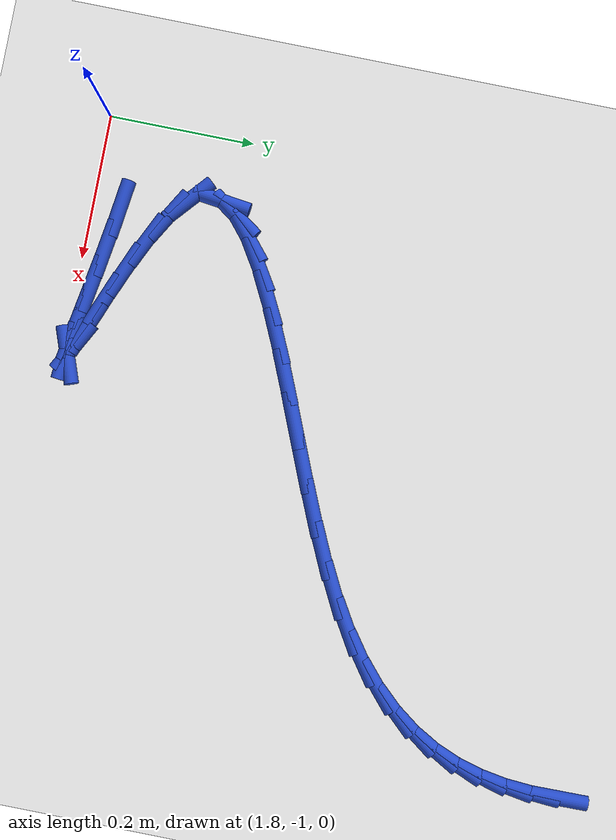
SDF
<sdf version="1.6">
 <world name="default">
  <model name="ground_plane">
   <static>1</static>
   <link name="link">
    <collision name="collision">
     <geometry><plane><normal>0 0 1</normal><size>100 100</size></plane></geometry>
     <surface><friction><ode><mu>100</mu><mu2>50</mu2></ode></friction></surface>
    </collision>
    <visual name="visual">
     <cast_shadows>0</cast_shadows>
     <geometry><plane><normal>0 0 1</normal><size>100 100</size></plane></geometry>
     <material>
      <script><uri>file://media/materials/scripts/gazebo.material</uri><name>Gazebo/WhiteGlow</name></script>
     </material>
    </visual>
   </link>
  </model>
  <model name="line">
   <link name="link_119">
    <pose>2.592602277168068 -0.21983788371928903 0.01 0 1.57 -1.5612633058571868</pose>
    <collision name="collision">
     <geometry><cylinder><radius>0.01</radius><length>0.08</length></cylinder></geometry>
    </collision>
    <visual name="visual">
     <material>
      <script><name>Gazebo/Blue</name><uri>file://media/materials/scripts/gazebo.material</uri></script>
     </material>
     <geometry><cylinder><radius>0.01</radius><length>0.08</length></cylinder></geometry>
    </visual>
   </link>
   <link name="link_120">
    <pose>2.5929655527846958 -0.2579438119752452 0.01 0 1.57 1.4981975116933537</pose>
    <collision name="collision">
     <geometry><cylinder><radius>0.01</radius><length>0.08</length></cylinder></geometry>
    </collision>
    <visual name="visual">
     <material>
      <script><name>Gazebo/Blue</name><uri>file://media/materials/scripts/gazebo.material</uri></script>
     </material>
     <geometry><cylinder><radius>0.01</radius><length>0.08</length></cylinder></geometry>
    </visual>
   </link>
   <link name="link_121">
    <pose>2.5902887094207965 -0.2947507331453954 0.01 0 1.57 1.4025398007083074</pose>
    <collision name="collision">
     <geometry><cylinder><radius>0.01</radius><length>0.08</length></cylinder></geometry>
    </collision>
    <visual name="visual">
     <material>
      <script><name>Gazebo/Blue</name><uri>file://media/materials/scripts/gazebo.material</uri></script>
     </material>
     <geometry><cylinder><radius>0.01</radius><length>0.08</length></cylinder></geometry>
    </visual>
   </link>
   <link name="link_122">
    <pose>2.584251670092782 -0.3302914732628498 0.01 0 1.57 1.2947833184522906</pose>
    <collision name="collision">
     <geometry><cylinder><radius>0.01</radius><length>0.08</length></cylinder></geometry>
    </collision>
    <visual name="visual">
     <material>
      <script><name>Gazebo/Blue</name><uri>file://media/materials/scripts/gazebo.material</uri></script>
     </material>
     <geometry><cylinder><radius>0.01</radius><length>0.08</length></cylinder></geometry>
    </visual>
   </link>
   <link name="link_123">
    <pose>2.5745343578170656 -0.3645988583607156 0.01 0 1.57 1.1779850119997668</pose>
    <collision name="collision">
     <geometry><cylinder><radius>0.01</radius><length>0.08</length></cylinder></geometry>
    </collision>
    <visual name="visual">
     <material>
      <script><name>Gazebo/Blue</name><uri>file://media/materials/scripts/gazebo.material</uri></script>
     </material>
     <geometry><cylinder><radius>0.01</radius><length>0.08</length></cylinder></geometry>
    </visual>
   </link>
   <link name="link_124">
    <pose>2.560816695610065 -0.39770571447210323 0.01 0 1.57 1.0566885724210748</pose>
    <collision name="collision">
     <geometry><cylinder><radius>0.01</radius><length>0.08</length></cylinder></geometry>
    </collision>
    <visual name="visual">
     <material>
      <script><name>Gazebo/Blue</name><uri>file://media/materials/scripts/gazebo.material</uri></script>
     </material>
     <geometry><cylinder><radius>0.01</radius><length>0.08</length></cylinder></geometry>
    </visual>
   </link>
   <link name="link_125">
    <pose>2.5427786064881928 -0.4296448676301218 0.01 0 1.57 0.9361756696212684</pose>
    <collision name="collision">
     <geometry><cylinder><radius>0.01</radius><length>0.08</length></cylinder></geometry>
    </collision>
    <visual name="visual">
     <material>
      <script><name>Gazebo/Blue</name><uri>file://media/materials/scripts/gazebo.material</uri></script>
     </material>
     <geometry><cylinder><radius>0.01</radius><length>0.08</length></cylinder></geometry>
    </visual>
   </link>
   <link name="link_126">
    <pose>2.5201000134678626 -0.46044914386788105 0.01 0 1.57 0.8213610453129124</pose>
    <collision name="collision">
     <geometry><cylinder><radius>0.01</radius><length>0.08</length></cylinder></geometry>
    </collision>
    <visual name="visual">
     <material>
      <script><name>Gazebo/Blue</name><uri>file://media/materials/scripts/gazebo.material</uri></script>
     </material>
     <geometry><cylinder><radius>0.01</radius><length>0.08</length></cylinder></geometry>
    </visual>
   </link>
   <link name="link_127">
    <pose>2.4924608395654895 -0.4901513692184886 0.01 0 1.57 0.7158656938118829</pose>
    <collision name="collision">
     <geometry><cylinder><radius>0.01</radius><length>0.08</length></cylinder></geometry>
    </collision>
    <visual name="visual">
     <material>
      <script><name>Gazebo/Blue</name><uri>file://media/materials/scripts/gazebo.material</uri></script>
     </material>
     <geometry><cylinder><radius>0.01</radius><length>0.08</length></cylinder></geometry>
    </visual>
   </link>
   <link name="link_128">
    <pose>2.4595410077974886 -0.5187843697150548 0.01 0 1.57 0.6216561109139334</pose>
    <collision name="collision">
     <geometry><cylinder><radius>0.01</radius><length>0.08</length></cylinder></geometry>
    </collision>
    <visual name="visual">
     <material>
      <script><name>Gazebo/Blue</name><uri>file://media/materials/scripts/gazebo.material</uri></script>
     </material>
     <geometry><cylinder><radius>0.01</radius><length>0.08</length></cylinder></geometry>
    </visual>
   </link>
   <link name="link_129">
    <pose>2.4210204411802745 -0.5463809713906886 0.01 0 1.57 0.5395356369330503</pose>
    <collision name="collision">
     <geometry><cylinder><radius>0.01</radius><length>0.08</length></cylinder></geometry>
    </collision>
    <visual name="visual">
     <material>
      <script><name>Gazebo/Blue</name><uri>file://media/materials/scripts/gazebo.material</uri></script>
     </material>
     <geometry><cylinder><radius>0.01</radius><length>0.08</length></cylinder></geometry>
    </visual>
   </link>
   <link name="link_130">
    <pose>2.376608037273366 -0.5729750559036164 0.01 0 1.57 0.4762579044031991</pose>
    <collision name="collision">
     <geometry><cylinder><radius>0.01</radius><length>0.08</length></cylinder></geometry>
    </collision>
    <visual name="visual">
     <material>
      <script><name>Gazebo/Blue</name><uri>file://media/materials/scripts/gazebo.material</uri></script>
     </material>
     <geometry><cylinder><radius>0.01</radius><length>0.08</length></cylinder></geometry>
    </visual>
   </link>
   <link name="link_131">
    <pose>2.326872474169637 -0.5986318291653199 0.01 0 1.57 0.4343329327279284</pose>
    <collision name="collision">
     <geometry><cylinder><radius>0.01</radius><length>0.08</length></cylinder></geometry>
    </collision>
    <visual name="visual">
     <material>
      <script><name>Gazebo/Blue</name><uri>file://media/materials/scripts/gazebo.material</uri></script>
     </material>
     <geometry><cylinder><radius>0.01</radius><length>0.08</length></cylinder></geometry>
    </visual>
   </link>
   <link name="link_132">
    <pose>2.273365711880321 -0.6234523208476886 0.01 0 1.57 0.4083418930524401</pose>
    <collision name="collision">
     <geometry><cylinder><radius>0.01</radius><length>0.08</length></cylinder></geometry>
    </collision>
    <visual name="visual">
     <material>
      <script><name>Gazebo/Blue</name><uri>file://media/materials/scripts/gazebo.material</uri></script>
     </material>
     <geometry><cylinder><radius>0.01</radius><length>0.08</length></cylinder></geometry>
    </visual>
   </link>
   <link name="link_133">
    <pose>2.2176935248081686 -0.6475395212341455 0.01 0 1.57 0.39519967780633986</pose>
    <collision name="collision">
     <geometry><cylinder><radius>0.01</radius><length>0.08</length></cylinder></geometry>
    </collision>
    <visual name="visual">
     <material>
      <script><name>Gazebo/Blue</name><uri>file://media/materials/scripts/gazebo.material</uri></script>
     </material>
     <geometry><cylinder><radius>0.01</radius><length>0.08</length></cylinder></geometry>
    </visual>
   </link>
   <link name="link_134">
    <pose>2.161461687355934 -0.6709964206081136 0.01 0 1.57 0.3937954618969743</pose>
    <collision name="collision">
     <geometry><cylinder><radius>0.01</radius><length>0.08</length></cylinder></geometry>
    </collision>
    <visual name="visual">
     <material>
      <script><name>Gazebo/Blue</name><uri>file://media/materials/scripts/gazebo.material</uri></script>
     </material>
     <geometry><cylinder><radius>0.01</radius><length>0.08</length></cylinder></geometry>
    </visual>
   </link>
   <link name="link_135">
    <pose>2.1062759739263703 -0.6939260092530162 0.01 0 1.57 0.4047434410930335</pose>
    <collision name="collision">
     <geometry><cylinder><radius>0.01</radius><length>0.08</length></cylinder></geometry>
    </collision>
    <visual name="visual">
     <material>
      <script><name>Gazebo/Blue</name><uri>file://media/materials/scripts/gazebo.material</uri></script>
     </material>
     <geometry><cylinder><radius>0.01</radius><length>0.08</length></cylinder></geometry>
    </visual>
   </link>
   <link name="link_136">
    <pose>2.0537421589222324 -0.7164312774522746 0.01 0 1.57 0.4307439550627559</pose>
    <collision name="collision">
     <geometry><cylinder><radius>0.01</radius><length>0.08</length></cylinder></geometry>
    </collision>
    <visual name="visual">
     <material>
      <script><name>Gazebo/Blue</name><uri>file://media/materials/scripts/gazebo.material</uri></script>
     </material>
     <geometry><cylinder><radius>0.01</radius><length>0.08</length></cylinder></geometry>
    </visual>
   </link>
   <link name="link_137">
    <pose>2.0054660167462734 -0.7386152154893126 0.01 0 1.57 0.47786602826383145</pose>
    <collision name="collision">
     <geometry><cylinder><radius>0.01</radius><length>0.08</length></cylinder></geometry>
    </collision>
    <visual name="visual">
     <material>
      <script><name>Gazebo/Blue</name><uri>file://media/materials/scripts/gazebo.material</uri></script>
     </material>
     <geometry><cylinder><radius>0.01</radius><length>0.08</length></cylinder></geometry>
    </visual>
   </link>
   <link name="link_138">
    <pose>1.9630533218012465 -0.7605808136475525 0.01 0 1.57 0.5588169649221423</pose>
    <collision name="collision">
     <geometry><cylinder><radius>0.01</radius><length>0.08</length></cylinder></geometry>
    </collision>
    <visual name="visual">
     <material>
      <script><name>Gazebo/Blue</name><uri>file://media/materials/scripts/gazebo.material</uri></script>
     </material>
     <geometry><cylinder><radius>0.01</radius><length>0.08</length></cylinder></geometry>
    </visual>
   </link>
   <link name="link_139">
    <pose>1.9281098484899053 -0.7824310622104178 0.01 0 1.57 0.7011109098848541</pose>
    <collision name="collision">
     <geometry><cylinder><radius>0.01</radius><length>0.08</length></cylinder></geometry>
    </collision>
    <visual name="visual">
     <material>
      <script><name>Gazebo/Blue</name><uri>file://media/materials/scripts/gazebo.material</uri></script>
     </material>
     <geometry><cylinder><radius>0.01</radius><length>0.08</length></cylinder></geometry>
    </visual>
   </link>
   <link name="link_140">
    <pose>1.902241371215004 -0.80426895146133 0.01 0 1.57 0.965053667085438</pose>
    <collision name="collision">
     <geometry><cylinder><radius>0.01</radius><length>0.08</length></cylinder></geometry>
    </collision>
    <visual name="visual">
     <material>
      <script><name>Gazebo/Blue</name><uri>file://media/materials/scripts/gazebo.material</uri></script>
     </material>
     <geometry><cylinder><radius>0.01</radius><length>0.08</length></cylinder></geometry>
    </visual>
   </link>
   <link name="link_141">
    <pose>1.8870536643792963 -0.8261974716837128 0.01 0 1.57 1.4403975722540687</pose>
    <collision name="collision">
     <geometry><cylinder><radius>0.01</radius><length>0.08</length></cylinder></geometry>
    </collision>
    <visual name="visual">
     <material>
      <script><name>Gazebo/Blue</name><uri>file://media/materials/scripts/gazebo.material</uri></script>
     </material>
     <geometry><cylinder><radius>0.01</radius><length>0.08</length></cylinder></geometry>
    </visual>
   </link>
   <link name="link_143">
    <pose>1.895143659636474 -0.87073836617658 0.01 0 1.57 -0.7148641396453516</pose>
    <collision name="collision">
     <geometry><cylinder><radius>0.01</radius><length>0.08</length></cylinder></geometry>
    </collision>
    <visual name="visual">
     <material>
      <script><name>Gazebo/Blue</name><uri>file://media/materials/scripts/gazebo.material</uri></script>
     </material>
     <geometry><cylinder><radius>0.01</radius><length>0.08</length></cylinder></geometry>
    </visual>
   </link>
   <link name="link_144">
    <pose>1.921389973001213 -0.8935207424568689 0.01 0 1.57 -0.5272028281895278</pose>
    <collision name="collision">
     <geometry><cylinder><radius>0.01</radius><length>0.08</length></cylinder></geometry>
    </collision>
    <visual name="visual">
     <material>
      <script><name>Gazebo/Blue</name><uri>file://media/materials/scripts/gazebo.material</uri></script>
     </material>
     <geometry><cylinder><radius>0.01</radius><length>0.08</length></cylinder></geometry>
    </visual>
   </link>
   <link name="link_145">
    <pose>1.9602431122752069 -0.9161397080030259 0.01 0 1.57 -0.4402031468602808</pose>
    <collision name="collision">
     <geometry><cylinder><radius>0.01</radius><length>0.08</length></cylinder></geometry>
    </collision>
    <visual name="visual">
     <material>
      <script><name>Gazebo/Blue</name><uri>file://media/materials/scripts/gazebo.material</uri></script>
     </material>
     <geometry><cylinder><radius>0.01</radius><length>0.08</length></cylinder></geometry>
    </visual>
   </link>
   <link name="link_146">
    <pose>2.0057625205099523 -0.9375806566987396 0.01 0 1.57 -0.3948960122665479</pose>
    <collision name="collision">
     <geometry><cylinder><radius>0.01</radius><length>0.08</length></cylinder></geometry>
    </collision>
    <visual name="visual">
     <material>
      <script><name>Gazebo/Blue</name><uri>file://media/materials/scripts/gazebo.material</uri></script>
     </material>
     <geometry><cylinder><radius>0.01</radius><length>0.08</length></cylinder></geometry>
    </visual>
   </link>
   <link name="link_147">
    <pose>2.051910252077014 -0.9568145593613097 0.01 0 1.57 -0.3741968792848628</pose>
    <collision name="collision">
     <geometry><cylinder><radius>0.01</radius><length>0.08</length></cylinder></geometry>
    </collision>
    <visual name="visual">
     <material>
      <script><name>Gazebo/Blue</name><uri>file://media/materials/scripts/gazebo.material</uri></script>
     </material>
     <geometry><cylinder><radius>0.01</radius><length>0.08</length></cylinder></geometry>
    </visual>
   </link>
   <link name="link_148">
    <pose>2.0926483613479583 -0.9728123868080372 0.01 0 1.57 -0.38099209650301563</pose>
    <collision name="collision">
     <geometry><cylinder><radius>0.01</radius><length>0.08</length></cylinder></geometry>
    </collision>
    <visual name="visual">
     <material>
      <script><name>Gazebo/Blue</name><uri>file://media/materials/scripts/gazebo.material</uri></script>
     </material>
     <geometry><cylinder><radius>0.01</radius><length>0.08</length></cylinder></geometry>
    </visual>
   </link>
   <link name="link_149">
    <pose>2.1219389026943474 -0.9845451098562213 0.01 0 1.57 -0.48782419405774224</pose>
    <collision name="collision">
     <geometry><cylinder><radius>0.01</radius><length>0.08</length></cylinder></geometry>
    </collision>
    <visual name="visual">
     <material>
      <script><name>Gazebo/Blue</name><uri>file://media/materials/scripts/gazebo.material</uri></script>
     </material>
     <geometry><cylinder><radius>0.01</radius><length>0.08</length></cylinder></geometry>
    </visual>
   </link>
   <link name="link_150">
    <pose>2.134336625034364 -0.9911232985941197 0.01 0 1.57 0.34252550951168137</pose>
    <collision name="collision">
     <geometry><cylinder><radius>0.01</radius><length>0.08</length></cylinder></geometry>
    </collision>
    <visual name="visual">
     <material>
      <script><name>Gazebo/Blue</name><uri>file://media/materials/scripts/gazebo.material</uri></script>
     </material>
     <geometry><cylinder><radius>0.01</radius><length>0.08</length></cylinder></geometry>
    </visual>
   </link>
   <link name="link_151">
    <pose>2.129480286667464 -0.9928549763465984 0.01 0 1.57 -0.11006865684781135</pose>
    <collision name="collision">
     <geometry><cylinder><radius>0.01</radius><length>0.08</length></cylinder></geometry>
    </collision>
    <visual name="visual">
     <material>
      <script><name>Gazebo/Blue</name><uri>file://media/materials/scripts/gazebo.material</uri></script>
     </material>
     <geometry><cylinder><radius>0.01</radius><length>0.08</length></cylinder></geometry>
    </visual>
   </link>
   <link name="link_152">
    <pose>2.1095950697444383 -0.99065735524597 0.01 0 1.57 -0.15799667087699507</pose>
    <collision name="collision">
     <geometry><cylinder><radius>0.01</radius><length>0.08</length></cylinder></geometry>
    </collision>
    <visual name="visual">
     <material>
      <script><name>Gazebo/Blue</name><uri>file://media/materials/scripts/gazebo.material</uri></script>
     </material>
     <geometry><cylinder><radius>0.01</radius><length>0.08</length></cylinder></geometry>
    </visual>
   </link>
   <link name="link_153">
    <pose>2.0769266151620944 -0.9854524661394217 0.01 0 1.57 -0.16715487815336635</pose>
    <collision name="collision">
     <geometry><cylinder><radius>0.01</radius><length>0.08</length></cylinder></geometry>
    </collision>
    <visual name="visual">
     <material>
      <script><name>Gazebo/Blue</name><uri>file://media/materials/scripts/gazebo.material</uri></script>
     </material>
     <geometry><cylinder><radius>0.01</radius><length>0.08</length></cylinder></geometry>
    </visual>
   </link>
   <link name="link_154">
    <pose>2.0337205638172344 -0.9781623398741409 0.01 0 1.57 -0.16269779907602147</pose>
    <collision name="collision">
     <geometry><cylinder><radius>0.01</radius><length>0.08</length></cylinder></geometry>
    </collision>
    <visual name="visual">
     <material>
      <script><name>Gazebo/Blue</name><uri>file://media/materials/scripts/gazebo.material</uri></script>
     </material>
     <geometry><cylinder><radius>0.01</radius><length>0.08</length></cylinder></geometry>
    </visual>
   </link>
   <link name="link_155">
    <pose>1.982222556606663 -0.9697090072973145 0.01 0 1.57 -0.14995810894037623</pose>
    <collision name="collision">
     <geometry><cylinder><radius>0.01</radius><length>0.08</length></cylinder></geometry>
    </collision>
    <visual name="visual">
     <material>
      <script><name>Gazebo/Blue</name><uri>file://media/materials/scripts/gazebo.material</uri></script>
     </material>
     <geometry><cylinder><radius>0.01</radius><length>0.08</length></cylinder></geometry>
    </visual>
   </link>
   <link name="link_156">
    <pose>1.9246782344271827 -0.9610144992561296 0.01 0 1.57 -0.12989698111097167</pose>
    <collision name="collision">
     <geometry><cylinder><radius>0.01</radius><length>0.08</length></cylinder></geometry>
    </collision>
    <visual name="visual">
     <material>
      <script><name>Gazebo/Blue</name><uri>file://media/materials/scripts/gazebo.material</uri></script>
     </material>
     <geometry><cylinder><radius>0.01</radius><length>0.08</length></cylinder></geometry>
    </visual>
   </link>
  </model>
 </world>
</sdf>
